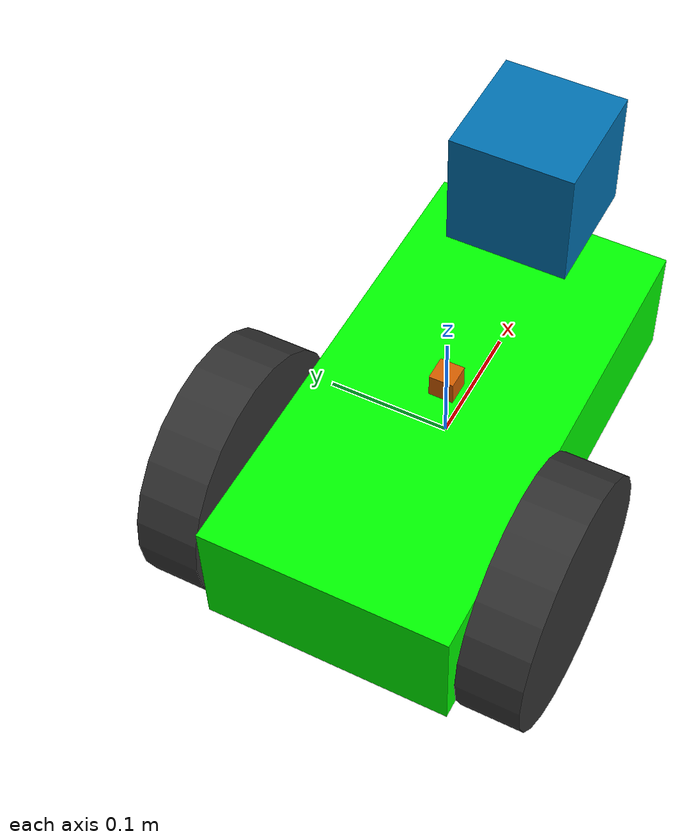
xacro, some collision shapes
<?xml version='1.0'?>

<robot name="bondk" xmlns:xacro="http://www.ros.org/wiki/xacro">

  <xacro:include filename="$(find bondk_desc)/urdf/materials.xacro"/>
  <xacro:include filename="$(find bondk_desc)/urdf/bondk.gazebo"/>

  <link name="base_link">
  </link>

  <link name="chassis">
    <pose>0 0 0.1 0 0 0</pose>

    <inertial>
      <mass value="5.0"/>
      <origin xyz="0.0 0 0.0" rpy=" 0 0 0"/>
      <inertia
          iyy="0.07083333333" ixy="0" ixz="0"
          ixx="0.02083333333" iyz="0"
          izz="0.08333333333"
      />
    </inertial>

    <collision name='collision'>
      <geometry>
        <box size=".4 .2 .1"/>
      </geometry>
    </collision>

    <visual name='chassis_visual'>
      <origin xyz="0 0 0" rpy=" 0 0 0"/>
      <geometry>
        <box size=".4 .2 .1"/>
      </geometry>
      <material name="green">
      </material>
    </visual>

    <collision name='caster_front_collision'>
      <origin xyz="0.15 0 -0.05" rpy=" 0 0 0"/>
      <geometry>
        <sphere radius="0.05"/>
      </geometry>
      <surface>
        <friction>
          <ode>
            <mu>0</mu>
            <mu2>0</mu2>
            <slip1>1.0</slip1>
            <slip2>1.0</slip2>
          </ode>
        </friction>
      </surface>
    </collision>

    <visual name='caster_front_visual'>
      <origin xyz="0.15 0 -0.05" rpy=" 0 0 0"/>
      <geometry>
        <sphere radius="0.05"/>
      </geometry>
      <material name="silver">
      </material>
    </visual>

  </link>

  <link name="left_wheel">
    <!--origin xyz="0.1 0.13 0.1" rpy="0 1.5707 1.5707"/-->
    <collision name="collision">
      <origin xyz="0 0 0" rpy="0 1.5707 1.5707"/>
      <geometry>
        <cylinder radius="0.1" length="0.05"/>
      </geometry>
    </collision>
    <visual name="left_wheel_visual">
      <origin xyz="0 0 0" rpy="0 1.5707 1.5707"/>
      <geometry>
        <cylinder radius="0.1" length="0.05"/>
      </geometry>
      <material name="black">
      </material>
    </visual>
    <inertial>
      <origin xyz="0 0 0" rpy="0 1.5707 1.5707"/>
      <mass value="5"/>
      <inertia
        ixx="0.01354166667" ixy="0.0" ixz="0.0"
        iyy="0.01354166667" iyz="0.0"
        izz="0.025"/>
    </inertial>
  </link>

  <link name="right_wheel">
    <!--origin xyz="0.1 -0.13 0.1" rpy="0 1.5707 1.5707"/-->
    <collision name="collision">
      <origin xyz="0 0 0" rpy="0 1.5707 1.5707"/>
      <geometry>
        <cylinder radius="0.1" length="0.05"/>
      </geometry>
    </collision>
    <visual name="right_wheel_visual">
      <origin xyz="0 0 0" rpy="0 1.5707 1.5707"/>
      <geometry>
        <cylinder radius="0.1" length="0.05"/>
      </geometry>
      <material name="black">
      </material>
    </visual>
    <inertial>
      <origin xyz="0 0 0" rpy="0 1.5707 1.5707"/>
      <mass value="5"/>
      <inertia
        ixx="0.01354166667" ixy="0.0" ixz="0.0"
        iyy="0.01354166667" iyz="0.0"
        izz="0.025"/>
    </inertial>
  </link>

  <joint type="continuous" name="left_wheel_hinge">
    <origin xyz="-0.1 0.13 0" rpy="0 0 0"/>
    <!--origin xyz="0.1 0.13 0" rpy="0 1.5707 1.5707"/-->
    <child link="left_wheel"/>
    <parent link="chassis"/>
    <axis xyz="0 1 0" rpy="0 0 0"/>
    <joint_properties damping="0.0" friction="0.0"/>
  </joint>

  <joint type="continuous" name="right_wheel_hinge">
    <origin xyz="-0.1 -0.13 0" rpy="0 0 0"/>
    <!--origin xyz="0.1 -0.13 0" rpy="0 1.5707 1.5707"/-->
    <child link="right_wheel"/>
    <parent link="chassis"/>
    <axis xyz="0 1 0" rpy="0 0 0"/>
    <joint_properties damping="0.0" friction="0.0"/>
  </joint>

  <joint name="base_link_joint" type="fixed">
    <parent link="base_link"/>
    <child link="chassis"/>
  </joint>

   <!-- Hokuyo Laser -->
  <link name="hokuyo_link">
    <collision>
      <origin xyz="0 0 0" rpy="0 0 0"/>
      <geometry>
    <box size="0.1 0.1 0.1"/>
      </geometry>
    </collision>

    <visual>
      <origin xyz="0 0 0" rpy="0 0 0"/>
      <geometry>
        <mesh filename="package://bondk_desc/meshes/hokuyo.dae"/>
      </geometry>
    </visual>

    <inertial>
      <mass value="1e-5" />
      <origin xyz="0 0 0" rpy="0 0 0"/>
      <inertia ixx="1e-6" ixy="0" ixz="0" iyy="1e-6" iyz="0" izz="1e-6" />
    </inertial>
  </link>

  <joint name="hokuyo_joint" type="fixed">
    <axis xyz="0 1 0" />
    <origin xyz="0.15 0 0.15" rpy="0 0 0"/>
    <parent link="chassis"/>
    <child link="hokuyo_link"/>
  </joint>

<!-- imu seneor -->

  <link name="imu_link">
    <collision>
      <origin xyz="0 0 0" rpy="0 0 0"/>
      <geometry>
    <box size="0.02 0.02 0.02"/>
      </geometry>
    </collision>

    <visual>
      <origin xyz="0 0 0" rpy="0 0 0"/>
      <geometry>
        <box size="0.02 0.02 0.02"/>
      </geometry>
    </visual>

    <inertial>
      <mass value="1e-5" />
      <origin xyz="0 0 0" rpy="0 0 0"/>
      <inertia ixx="1e-6" ixy="0" ixz="0" iyy="1e-6" iyz="0" izz="1e-6" />
    </inertial>
  </link>

  <joint name="imu_joint" type="fixed">
    <axis xyz="0 1 0" />
    <origin xyz="0 0 0.06" rpy="0 0 0"/>
    <parent link="chassis"/>
    <child link="imu_link"/>
  </joint>

</robot>

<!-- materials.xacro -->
<robot >

    <material name="green">
        <color rgba="0.0 1.0 0.0 1.0"/>
      </material>

      <material name="silver">
        <color rgba="0.8 0.8 0.8 1.0"/>
      </material>

      <material name="black">
        <color rgba="0.2 0.2 0.2 1.0"/>
      </material>

      <material name="red">
        <color rgba="1.0 0.0 0.0 1.0"/>
      </material>

      <material name="blue">
        <color rgba="0.0 0.0 1.0 1.0"/>
      </material>

</robot>
